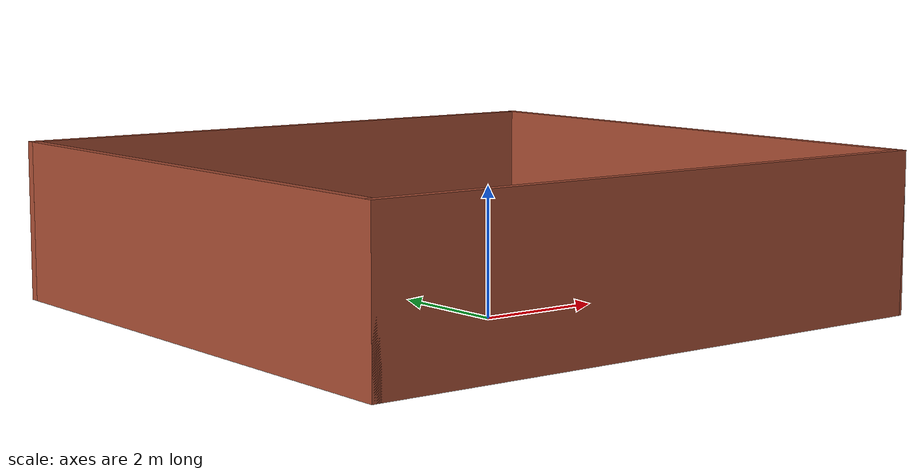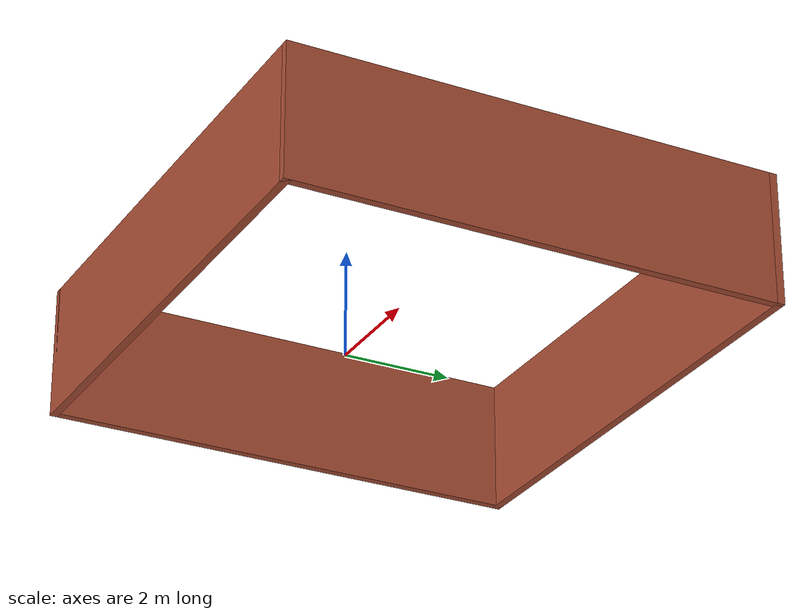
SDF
<?xml version='1.0'?>
<sdf version='1.6'>
  <model name='Untitled'>
    <pose frame=''>0.21 1.02 0 0 -0 0</pose>
    <link name='Wall_0'>
      <collision name='Wall_0_Collision'>
        <geometry>
          <box>
            <size>9.75 0.15 2.5</size>
          </box>
        </geometry>
        <pose frame=''>0 0 1.25 0 -0 0</pose>
      </collision>
      <visual name='Wall_0_Visual'>
        <pose frame=''>0 0 1.25 0 -0 0</pose>
        <geometry>
          <box>
            <size>9.75 0.15 2.5</size>
          </box>
        </geometry>
        <material>
          <script>
            <uri>file://media/materials/scripts/gazebo.material</uri>
            <name>Gazebo/Bricks</name>
          </script>
          <ambient>1 1 1 1</ambient>
        </material>
      </visual>
      <pose frame=''>0 -4.55 0 0 -0 0</pose>
    </link>
    <link name='Wall_2'>
      <collision name='Wall_2_Collision'>
        <geometry>
          <box>
            <size>9.25 0.15 2.5</size>
          </box>
        </geometry>
        <pose frame=''>0 0 1.25 0 -0 0</pose>
      </collision>
      <visual name='Wall_2_Visual'>
        <pose frame=''>0 0 1.25 0 -0 0</pose>
        <geometry>
          <box>
            <size>9.25 0.15 2.5</size>
          </box>
        </geometry>
        <material>
          <script>
            <uri>file://media/materials/scripts/gazebo.material</uri>
            <name>Gazebo/Bricks</name>
          </script>
          <ambient>1 1 1 1</ambient>
        </material>
      </visual>
      <pose frame=''>4.8 0 0 0 -0 1.5708</pose>
    </link>
    <link name='Wall_3'>
      <collision name='Wall_3_Collision'>
        <geometry>
          <box>
            <size>9.75 0.15 2.5</size>
          </box>
        </geometry>
        <pose frame=''>0 0 1.25 0 -0 0</pose>
      </collision>
      <visual name='Wall_3_Visual'>
        <pose frame=''>0 0 1.25 0 -0 0</pose>
        <geometry>
          <box>
            <size>9.75 0.15 2.5</size>
          </box>
        </geometry>
        <material>
          <script>
            <uri>file://media/materials/scripts/gazebo.material</uri>
            <name>Gazebo/Bricks</name>
          </script>
          <ambient>1 1 1 1</ambient>
        </material>
      </visual>
      <pose frame=''>0 4.55 0 0 -0 3.14159</pose>
    </link>
    <link name='Wall_4'>
      <collision name='Wall_4_Collision'>
        <geometry>
          <box>
            <size>9.25 0.15 2.5</size>
          </box>
        </geometry>
        <pose frame=''>0 0 1.25 0 -0 0</pose>
      </collision>
      <visual name='Wall_4_Visual'>
        <pose frame=''>0 0 1.25 0 -0 0</pose>
        <geometry>
          <box>
            <size>9.25 0.15 2.5</size>
          </box>
        </geometry>
        <material>
          <script>
            <uri>file://media/materials/scripts/gazebo.material</uri>
            <name>Gazebo/Bricks</name>
          </script>
          <ambient>1 1 1 1</ambient>
        </material>
      </visual>
      <pose frame=''>-4.8 0 0 0 0 -1.5708</pose>
    </link>
    <static>1</static>
  </model>
</sdf>
